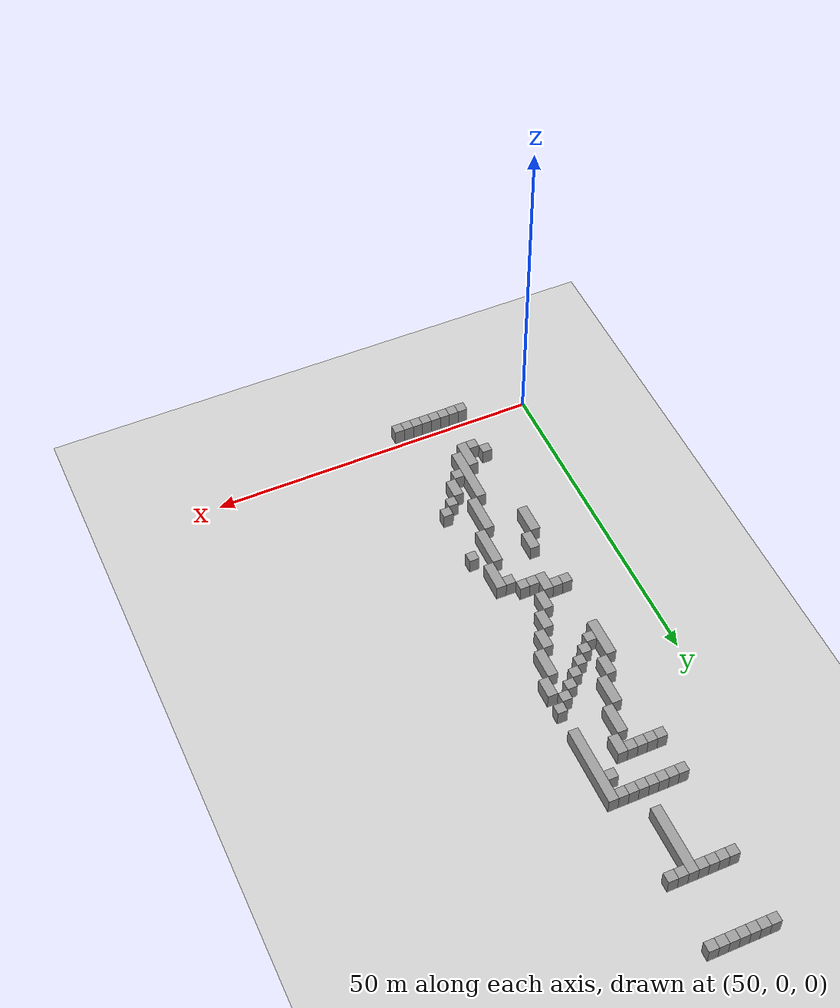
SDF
<sdf version="1.4">
 <world name="1_wall">
  <model name="ground_plane">
   <static>1</static>
   <link name="link">
    <collision name="collision">
     <geometry><plane><normal>0 0 1</normal><size>1000 1000</size></plane></geometry>
     <surface><friction><ode><mu>100</mu><mu2>50</mu2></ode></friction></surface>
    </collision>
    <visual name="visual">
     <cast_shadows>0</cast_shadows>
     <geometry><plane><normal>0 0 1</normal><size>10000 10000</size></plane></geometry>
     <material>
      <script><uri>file://media/materials/scripts/gazebo.material</uri><name>Gazebo/Grey</name></script>
     </material>
    </visual>
    <velocity_decay><linear>0</linear><angular>0</angular></velocity_decay>
   </link>
  </model>
  <model name="Wall_291">
   <static>1</static>
   <link name="Wall_291">
    <collision name="Wall_Collision_291">
     <geometry><box><size>1.5 1.5 2.5</size></box></geometry>
     <pose>0 0 1.25 0 -0 0</pose>
    </collision>
    <visual name="Wall_Visual_291">
     <pose>0 0 1.25 0 -0 0</pose>
     <geometry><box><size>1.5 1.5 2.5</size></box></geometry>
     <material>
      <script><uri>file://media/materials/scripts/gazebo.material</uri><name>Gazebo/Grey</name></script>
     </material>
    </visual>
    <velocity_decay><linear>0</linear><angular>0</angular></velocity_decay>
    <pose>60.0 -1.5 0 0 0 1.5707963267948966</pose>
   </link>
  </model>
  <model name="Wall_292">
   <static>1</static>
   <link name="Wall_292">
    <collision name="Wall_Collision_292">
     <geometry><box><size>1.5 1.5 2.5</size></box></geometry>
     <pose>0 0 1.25 0 -0 0</pose>
    </collision>
    <visual name="Wall_Visual_292">
     <pose>0 0 1.25 0 -0 0</pose>
     <geometry><box><size>1.5 1.5 2.5</size></box></geometry>
     <material>
      <script><uri>file://media/materials/scripts/gazebo.material</uri><name>Gazebo/Grey</name></script>
     </material>
    </visual>
    <velocity_decay><linear>0</linear><angular>0</angular></velocity_decay>
    <pose>60.0 7.5 0 0 0 1.5707963267948966</pose>
   </link>
  </model>
  <model name="Wall_293">
   <static>1</static>
   <link name="Wall_293">
    <collision name="Wall_Collision_293">
     <geometry><box><size>4.5 1.5 2.5</size></box></geometry>
     <pose>0 0 1.25 0 -0 0</pose>
    </collision>
    <visual name="Wall_Visual_293">
     <pose>0 0 1.25 0 -0 0</pose>
     <geometry><box><size>4.5 1.5 2.5</size></box></geometry>
     <material>
      <script><uri>file://media/materials/scripts/gazebo.material</uri><name>Gazebo/Grey</name></script>
     </material>
    </visual>
    <velocity_decay><linear>0</linear><angular>0</angular></velocity_decay>
    <pose>60.0 22.5 0 0 0 1.5707963267948966</pose>
   </link>
  </model>
  <model name="Wall_294">
   <static>1</static>
   <link name="Wall_294">
    <collision name="Wall_Collision_294">
     <geometry><box><size>1.5 1.5 2.5</size></box></geometry>
     <pose>0 0 1.25 0 -0 0</pose>
    </collision>
    <visual name="Wall_Visual_294">
     <pose>0 0 1.25 0 -0 0</pose>
     <geometry><box><size>1.5 1.5 2.5</size></box></geometry>
     <material>
      <script><uri>file://media/materials/scripts/gazebo.material</uri><name>Gazebo/Grey</name></script>
     </material>
    </visual>
    <velocity_decay><linear>0</linear><angular>0</angular></velocity_decay>
    <pose>60.0 34.5 0 0 0 1.5707963267948966</pose>
   </link>
  </model>
  <model name="Wall_295">
   <static>1</static>
   <link name="Wall_295">
    <collision name="Wall_Collision_295">
     <geometry><box><size>6.0 1.5 2.5</size></box></geometry>
     <pose>0 0 1.25 0 -0 0</pose>
    </collision>
    <visual name="Wall_Visual_295">
     <pose>0 0 1.25 0 -0 0</pose>
     <geometry><box><size>6.0 1.5 2.5</size></box></geometry>
     <material>
      <script><uri>file://media/materials/scripts/gazebo.material</uri><name>Gazebo/Grey</name></script>
     </material>
    </visual>
    <velocity_decay><linear>0</linear><angular>0</angular></velocity_decay>
    <pose>60.0 45.75 0 0 0 1.5707963267948966</pose>
   </link>
  </model>
  <model name="Wall_296">
   <static>1</static>
   <link name="Wall_296">
    <collision name="Wall_Collision_296">
     <geometry><box><size>1.5 1.5 2.5</size></box></geometry>
     <pose>0 0 1.25 0 -0 0</pose>
    </collision>
    <visual name="Wall_Visual_296">
     <pose>0 0 1.25 0 -0 0</pose>
     <geometry><box><size>1.5 1.5 2.5</size></box></geometry>
     <material>
      <script><uri>file://media/materials/scripts/gazebo.material</uri><name>Gazebo/Grey</name></script>
     </material>
    </visual>
    <velocity_decay><linear>0</linear><angular>0</angular></velocity_decay>
    <pose>60.0 63.0 0 0 0 1.5707963267948966</pose>
   </link>
  </model>
  <model name="Wall_297">
   <static>1</static>
   <link name="Wall_297">
    <collision name="Wall_Collision_297">
     <geometry><box><size>1.5 1.5 2.5</size></box></geometry>
     <pose>0 0 1.25 0 -0 0</pose>
    </collision>
    <visual name="Wall_Visual_297">
     <pose>0 0 1.25 0 -0 0</pose>
     <geometry><box><size>1.5 1.5 2.5</size></box></geometry>
     <material>
      <script><uri>file://media/materials/scripts/gazebo.material</uri><name>Gazebo/Grey</name></script>
     </material>
    </visual>
    <velocity_decay><linear>0</linear><angular>0</angular></velocity_decay>
    <pose>60.0 69.0 0 0 0 1.5707963267948966</pose>
   </link>
  </model>
  <model name="Wall_298">
   <static>1</static>
   <link name="Wall_298">
    <collision name="Wall_Collision_298">
     <geometry><box><size>1.5 1.5 2.5</size></box></geometry>
     <pose>0 0 1.25 0 -0 0</pose>
    </collision>
    <visual name="Wall_Visual_298">
     <pose>0 0 1.25 0 -0 0</pose>
     <geometry><box><size>1.5 1.5 2.5</size></box></geometry>
     <material>
      <script><uri>file://media/materials/scripts/gazebo.material</uri><name>Gazebo/Grey</name></script>
     </material>
    </visual>
    <velocity_decay><linear>0</linear><angular>0</angular></velocity_decay>
    <pose>60.0 82.5 0 0 0 1.5707963267948966</pose>
   </link>
  </model>
  <model name="Wall_299">
   <static>1</static>
   <link name="Wall_299">
    <collision name="Wall_Collision_299">
     <geometry><box><size>1.5 1.5 2.5</size></box></geometry>
     <pose>0 0 1.25 0 -0 0</pose>
    </collision>
    <visual name="Wall_Visual_299">
     <pose>0 0 1.25 0 -0 0</pose>
     <geometry><box><size>1.5 1.5 2.5</size></box></geometry>
     <material>
      <script><uri>file://media/materials/scripts/gazebo.material</uri><name>Gazebo/Grey</name></script>
     </material>
    </visual>
    <velocity_decay><linear>0</linear><angular>0</angular></velocity_decay>
    <pose>60.0 93.0 0 0 0 1.5707963267948966</pose>
   </link>
  </model>
  <model name="Wall_300">
   <static>1</static>
   <link name="Wall_300">
    <collision name="Wall_Collision_300">
     <geometry><box><size>1.5 1.5 2.5</size></box></geometry>
     <pose>0 0 1.25 0 -0 0</pose>
    </collision>
    <visual name="Wall_Visual_300">
     <pose>0 0 1.25 0 -0 0</pose>
     <geometry><box><size>1.5 1.5 2.5</size></box></geometry>
     <material>
      <script><uri>file://media/materials/scripts/gazebo.material</uri><name>Gazebo/Grey</name></script>
     </material>
    </visual>
    <velocity_decay><linear>0</linear><angular>0</angular></velocity_decay>
    <pose>61.5 -1.5 0 0 0 1.5707963267948966</pose>
   </link>
  </model>
  <model name="Wall_301">
   <static>1</static>
   <link name="Wall_301">
    <collision name="Wall_Collision_301">
     <geometry><box><size>1.5 1.5 2.5</size></box></geometry>
     <pose>0 0 1.25 0 -0 0</pose>
    </collision>
    <visual name="Wall_Visual_301">
     <pose>0 0 1.25 0 -0 0</pose>
     <geometry><box><size>1.5 1.5 2.5</size></box></geometry>
     <material>
      <script><uri>file://media/materials/scripts/gazebo.material</uri><name>Gazebo/Grey</name></script>
     </material>
    </visual>
    <velocity_decay><linear>0</linear><angular>0</angular></velocity_decay>
    <pose>61.5 6.0 0 0 0 1.5707963267948966</pose>
   </link>
  </model>
  <model name="Wall_302">
   <static>1</static>
   <link name="Wall_302">
    <collision name="Wall_Collision_302">
     <geometry><box><size>3.0 1.5 2.5</size></box></geometry>
     <pose>0 0 1.25 0 -0 0</pose>
    </collision>
    <visual name="Wall_Visual_302">
     <pose>0 0 1.25 0 -0 0</pose>
     <geometry><box><size>3.0 1.5 2.5</size></box></geometry>
     <material>
      <script><uri>file://media/materials/scripts/gazebo.material</uri><name>Gazebo/Grey</name></script>
     </material>
    </visual>
    <velocity_decay><linear>0</linear><angular>0</angular></velocity_decay>
    <pose>61.5 26.25 0 0 0 1.5707963267948966</pose>
   </link>
  </model>
  <model name="Wall_303">
   <static>1</static>
   <link name="Wall_303">
    <collision name="Wall_Collision_303">
     <geometry><box><size>1.5 1.5 2.5</size></box></geometry>
     <pose>0 0 1.25 0 -0 0</pose>
    </collision>
    <visual name="Wall_Visual_303">
     <pose>0 0 1.25 0 -0 0</pose>
     <geometry><box><size>1.5 1.5 2.5</size></box></geometry>
     <material>
      <script><uri>file://media/materials/scripts/gazebo.material</uri><name>Gazebo/Grey</name></script>
     </material>
    </visual>
    <velocity_decay><linear>0</linear><angular>0</angular></velocity_decay>
    <pose>61.5 34.5 0 0 0 1.5707963267948966</pose>
   </link>
  </model>
  <model name="Wall_304">
   <static>1</static>
   <link name="Wall_304">
    <collision name="Wall_Collision_304">
     <geometry><box><size>1.5 1.5 2.5</size></box></geometry>
     <pose>0 0 1.25 0 -0 0</pose>
    </collision>
    <visual name="Wall_Visual_304">
     <pose>0 0 1.25 0 -0 0</pose>
     <geometry><box><size>1.5 1.5 2.5</size></box></geometry>
     <material>
      <script><uri>file://media/materials/scripts/gazebo.material</uri><name>Gazebo/Grey</name></script>
     </material>
    </visual>
    <velocity_decay><linear>0</linear><angular>0</angular></velocity_decay>
    <pose>61.5 45.0 0 0 0 1.5707963267948966</pose>
   </link>
  </model>
  <model name="Wall_305">
   <static>1</static>
   <link name="Wall_305">
    <collision name="Wall_Collision_305">
     <geometry><box><size>3.0 1.5 2.5</size></box></geometry>
     <pose>0 0 1.25 0 -0 0</pose>
    </collision>
    <visual name="Wall_Visual_305">
     <pose>0 0 1.25 0 -0 0</pose>
     <geometry><box><size>3.0 1.5 2.5</size></box></geometry>
     <material>
      <script><uri>file://media/materials/scripts/gazebo.material</uri><name>Gazebo/Grey</name></script>
     </material>
    </visual>
    <velocity_decay><linear>0</linear><angular>0</angular></velocity_decay>
    <pose>61.5 50.25 0 0 0 1.5707963267948966</pose>
   </link>
  </model>
  <model name="Wall_306">
   <static>1</static>
   <link name="Wall_306">
    <collision name="Wall_Collision_306">
     <geometry><box><size>1.5 1.5 2.5</size></box></geometry>
     <pose>0 0 1.25 0 -0 0</pose>
    </collision>
    <visual name="Wall_Visual_306">
     <pose>0 0 1.25 0 -0 0</pose>
     <geometry><box><size>1.5 1.5 2.5</size></box></geometry>
     <material>
      <script><uri>file://media/materials/scripts/gazebo.material</uri><name>Gazebo/Grey</name></script>
     </material>
    </visual>
    <velocity_decay><linear>0</linear><angular>0</angular></velocity_decay>
    <pose>61.5 63.0 0 0 0 1.5707963267948966</pose>
   </link>
  </model>
  <model name="Wall_307">
   <static>1</static>
   <link name="Wall_307">
    <collision name="Wall_Collision_307">
     <geometry><box><size>1.5 1.5 2.5</size></box></geometry>
     <pose>0 0 1.25 0 -0 0</pose>
    </collision>
    <visual name="Wall_Visual_307">
     <pose>0 0 1.25 0 -0 0</pose>
     <geometry><box><size>1.5 1.5 2.5</size></box></geometry>
     <material>
      <script><uri>file://media/materials/scripts/gazebo.material</uri><name>Gazebo/Grey</name></script>
     </material>
    </visual>
    <velocity_decay><linear>0</linear><angular>0</angular></velocity_decay>
    <pose>61.5 69.0 0 0 0 1.5707963267948966</pose>
   </link>
  </model>
  <model name="Wall_308">
   <static>1</static>
   <link name="Wall_308">
    <collision name="Wall_Collision_308">
     <geometry><box><size>1.5 1.5 2.5</size></box></geometry>
     <pose>0 0 1.25 0 -0 0</pose>
    </collision>
    <visual name="Wall_Visual_308">
     <pose>0 0 1.25 0 -0 0</pose>
     <geometry><box><size>1.5 1.5 2.5</size></box></geometry>
     <material>
      <script><uri>file://media/materials/scripts/gazebo.material</uri><name>Gazebo/Grey</name></script>
     </material>
    </visual>
    <velocity_decay><linear>0</linear><angular>0</angular></velocity_decay>
    <pose>61.5 82.5 0 0 0 1.5707963267948966</pose>
   </link>
  </model>
  <model name="Wall_309">
   <static>1</static>
   <link name="Wall_309">
    <collision name="Wall_Collision_309">
     <geometry><box><size>1.5 1.5 2.5</size></box></geometry>
     <pose>0 0 1.25 0 -0 0</pose>
    </collision>
    <visual name="Wall_Visual_309">
     <pose>0 0 1.25 0 -0 0</pose>
     <geometry><box><size>1.5 1.5 2.5</size></box></geometry>
     <material>
      <script><uri>file://media/materials/scripts/gazebo.material</uri><name>Gazebo/Grey</name></script>
     </material>
    </visual>
    <velocity_decay><linear>0</linear><angular>0</angular></velocity_decay>
    <pose>61.5 93.0 0 0 0 1.5707963267948966</pose>
   </link>
  </model>
  <model name="Wall_310">
   <static>1</static>
   <link name="Wall_310">
    <collision name="Wall_Collision_310">
     <geometry><box><size>1.5 1.5 2.5</size></box></geometry>
     <pose>0 0 1.25 0 -0 0</pose>
    </collision>
    <visual name="Wall_Visual_310">
     <pose>0 0 1.25 0 -0 0</pose>
     <geometry><box><size>1.5 1.5 2.5</size></box></geometry>
     <material>
      <script><uri>file://media/materials/scripts/gazebo.material</uri><name>Gazebo/Grey</name></script>
     </material>
    </visual>
    <velocity_decay><linear>0</linear><angular>0</angular></velocity_decay>
    <pose>63.0 -1.5 0 0 0 1.5707963267948966</pose>
   </link>
  </model>
  <model name="Wall_311">
   <static>1</static>
   <link name="Wall_311">
    <collision name="Wall_Collision_311">
     <geometry><box><size>4.5 1.5 2.5</size></box></geometry>
     <pose>0 0 1.25 0 -0 0</pose>
    </collision>
    <visual name="Wall_Visual_311">
     <pose>0 0 1.25 0 -0 0</pose>
     <geometry><box><size>4.5 1.5 2.5</size></box></geometry>
     <material>
      <script><uri>file://media/materials/scripts/gazebo.material</uri><name>Gazebo/Grey</name></script>
     </material>
    </visual>
    <velocity_decay><linear>0</linear><angular>0</angular></velocity_decay>
    <pose>63.0 7.5 0 0 0 1.5707963267948966</pose>
   </link>
  </model>
  <model name="Wall_312">
   <static>1</static>
   <link name="Wall_312">
    <collision name="Wall_Collision_312">
     <geometry><box><size>3.0 1.5 2.5</size></box></geometry>
     <pose>0 0 1.25 0 -0 0</pose>
    </collision>
    <visual name="Wall_Visual_312">
     <pose>0 0 1.25 0 -0 0</pose>
     <geometry><box><size>3.0 1.5 2.5</size></box></geometry>
     <material>
      <script><uri>file://media/materials/scripts/gazebo.material</uri><name>Gazebo/Grey</name></script>
     </material>
    </visual>
    <velocity_decay><linear>0</linear><angular>0</angular></velocity_decay>
    <pose>63.0 33.75 0 0 0 1.5707963267948966</pose>
   </link>
  </model>
  <model name="Wall_313">
   <static>1</static>
   <link name="Wall_313">
    <collision name="Wall_Collision_313">
     <geometry><box><size>1.5 1.5 2.5</size></box></geometry>
     <pose>0 0 1.25 0 -0 0</pose>
    </collision>
    <visual name="Wall_Visual_313">
     <pose>0 0 1.25 0 -0 0</pose>
     <geometry><box><size>1.5 1.5 2.5</size></box></geometry>
     <material>
      <script><uri>file://media/materials/scripts/gazebo.material</uri><name>Gazebo/Grey</name></script>
     </material>
    </visual>
    <velocity_decay><linear>0</linear><angular>0</angular></velocity_decay>
    <pose>63.0 46.5 0 0 0 1.5707963267948966</pose>
   </link>
  </model>
  <model name="Wall_314">
   <static>1</static>
   <link name="Wall_314">
    <collision name="Wall_Collision_314">
     <geometry><box><size>4.5 1.5 2.5</size></box></geometry>
     <pose>0 0 1.25 0 -0 0</pose>
    </collision>
    <visual name="Wall_Visual_314">
     <pose>0 0 1.25 0 -0 0</pose>
     <geometry><box><size>4.5 1.5 2.5</size></box></geometry>
     <material>
      <script><uri>file://media/materials/scripts/gazebo.material</uri><name>Gazebo/Grey</name></script>
     </material>
    </visual>
    <velocity_decay><linear>0</linear><angular>0</angular></velocity_decay>
    <pose>63.0 54.0 0 0 0 1.5707963267948966</pose>
   </link>
  </model>
  <model name="Wall_315">
   <static>1</static>
   <link name="Wall_315">
    <collision name="Wall_Collision_315">
     <geometry><box><size>1.5 1.5 2.5</size></box></geometry>
     <pose>0 0 1.25 0 -0 0</pose>
    </collision>
    <visual name="Wall_Visual_315">
     <pose>0 0 1.25 0 -0 0</pose>
     <geometry><box><size>1.5 1.5 2.5</size></box></geometry>
     <material>
      <script><uri>file://media/materials/scripts/gazebo.material</uri><name>Gazebo/Grey</name></script>
     </material>
    </visual>
    <velocity_decay><linear>0</linear><angular>0</angular></velocity_decay>
    <pose>63.0 63.0 0 0 0 1.5707963267948966</pose>
   </link>
  </model>
  <model name="Wall_316">
   <static>1</static>
   <link name="Wall_316">
    <collision name="Wall_Collision_316">
     <geometry><box><size>1.5 1.5 2.5</size></box></geometry>
     <pose>0 0 1.25 0 -0 0</pose>
    </collision>
    <visual name="Wall_Visual_316">
     <pose>0 0 1.25 0 -0 0</pose>
     <geometry><box><size>1.5 1.5 2.5</size></box></geometry>
     <material>
      <script><uri>file://media/materials/scripts/gazebo.material</uri><name>Gazebo/Grey</name></script>
     </material>
    </visual>
    <velocity_decay><linear>0</linear><angular>0</angular></velocity_decay>
    <pose>63.0 69.0 0 0 0 1.5707963267948966</pose>
   </link>
  </model>
  <model name="Wall_317">
   <static>1</static>
   <link name="Wall_317">
    <collision name="Wall_Collision_317">
     <geometry><box><size>1.5 1.5 2.5</size></box></geometry>
     <pose>0 0 1.25 0 -0 0</pose>
    </collision>
    <visual name="Wall_Visual_317">
     <pose>0 0 1.25 0 -0 0</pose>
     <geometry><box><size>1.5 1.5 2.5</size></box></geometry>
     <material>
      <script><uri>file://media/materials/scripts/gazebo.material</uri><name>Gazebo/Grey</name></script>
     </material>
    </visual>
    <velocity_decay><linear>0</linear><angular>0</angular></velocity_decay>
    <pose>63.0 82.5 0 0 0 1.5707963267948966</pose>
   </link>
  </model>
  <model name="Wall_318">
   <static>1</static>
   <link name="Wall_318">
    <collision name="Wall_Collision_318">
     <geometry><box><size>1.5 1.5 2.5</size></box></geometry>
     <pose>0 0 1.25 0 -0 0</pose>
    </collision>
    <visual name="Wall_Visual_318">
     <pose>0 0 1.25 0 -0 0</pose>
     <geometry><box><size>1.5 1.5 2.5</size></box></geometry>
     <material>
      <script><uri>file://media/materials/scripts/gazebo.material</uri><name>Gazebo/Grey</name></script>
     </material>
    </visual>
    <velocity_decay><linear>0</linear><angular>0</angular></velocity_decay>
    <pose>63.0 93.0 0 0 0 1.5707963267948966</pose>
   </link>
  </model>
  <model name="Wall_319">
   <static>1</static>
   <link name="Wall_319">
    <collision name="Wall_Collision_319">
     <geometry><box><size>1.5 1.5 2.5</size></box></geometry>
     <pose>0 0 1.25 0 -0 0</pose>
    </collision>
    <visual name="Wall_Visual_319">
     <pose>0 0 1.25 0 -0 0</pose>
     <geometry><box><size>1.5 1.5 2.5</size></box></geometry>
     <material>
      <script><uri>file://media/materials/scripts/gazebo.material</uri><name>Gazebo/Grey</name></script>
     </material>
    </visual>
    <velocity_decay><linear>0</linear><angular>0</angular></velocity_decay>
    <pose>64.5 -1.5 0 0 0 1.5707963267948966</pose>
   </link>
  </model>
  <model name="Wall_320">
   <static>1</static>
   <link name="Wall_320">
    <collision name="Wall_Collision_320">
     <geometry><box><size>9.0 1.5 2.5</size></box></geometry>
     <pose>0 0 1.25 0 -0 0</pose>
    </collision>
    <visual name="Wall_Visual_320">
     <pose>0 0 1.25 0 -0 0</pose>
     <geometry><box><size>9.0 1.5 2.5</size></box></geometry>
     <material>
      <script><uri>file://media/materials/scripts/gazebo.material</uri><name>Gazebo/Grey</name></script>
     </material>
    </visual>
    <velocity_decay><linear>0</linear><angular>0</angular></velocity_decay>
    <pose>64.5 11.25 0 0 0 1.5707963267948966</pose>
   </link>
  </model>
  <model name="Wall_321">
   <static>1</static>
   <link name="Wall_321">
    <collision name="Wall_Collision_321">
     <geometry><box><size>1.5 1.5 2.5</size></box></geometry>
     <pose>0 0 1.25 0 -0 0</pose>
    </collision>
    <visual name="Wall_Visual_321">
     <pose>0 0 1.25 0 -0 0</pose>
     <geometry><box><size>1.5 1.5 2.5</size></box></geometry>
     <material>
      <script><uri>file://media/materials/scripts/gazebo.material</uri><name>Gazebo/Grey</name></script>
     </material>
    </visual>
    <velocity_decay><linear>0</linear><angular>0</angular></velocity_decay>
    <pose>64.5 33.0 0 0 0 1.5707963267948966</pose>
   </link>
  </model>
  <model name="Wall_322">
   <static>1</static>
   <link name="Wall_322">
    <collision name="Wall_Collision_322">
     <geometry><box><size>3.0 1.5 2.5</size></box></geometry>
     <pose>0 0 1.25 0 -0 0</pose>
    </collision>
    <visual name="Wall_Visual_322">
     <pose>0 0 1.25 0 -0 0</pose>
     <geometry><box><size>3.0 1.5 2.5</size></box></geometry>
     <material>
      <script><uri>file://media/materials/scripts/gazebo.material</uri><name>Gazebo/Grey</name></script>
     </material>
    </visual>
    <velocity_decay><linear>0</linear><angular>0</angular></velocity_decay>
    <pose>64.5 36.75 0 0 0 1.5707963267948966</pose>
   </link>
  </model>
  <model name="Wall_323">
   <static>1</static>
   <link name="Wall_323">
    <collision name="Wall_Collision_323">
     <geometry><box><size>1.5 1.5 2.5</size></box></geometry>
     <pose>0 0 1.25 0 -0 0</pose>
    </collision>
    <visual name="Wall_Visual_323">
     <pose>0 0 1.25 0 -0 0</pose>
     <geometry><box><size>1.5 1.5 2.5</size></box></geometry>
     <material>
      <script><uri>file://media/materials/scripts/gazebo.material</uri><name>Gazebo/Grey</name></script>
     </material>
    </visual>
    <velocity_decay><linear>0</linear><angular>0</angular></velocity_decay>
    <pose>64.5 48.0 0 0 0 1.5707963267948966</pose>
   </link>
  </model>
  <model name="Wall_324">
   <static>1</static>
   <link name="Wall_324">
    <collision name="Wall_Collision_324">
     <geometry><box><size>4.5 1.5 2.5</size></box></geometry>
     <pose>0 0 1.25 0 -0 0</pose>
    </collision>
    <visual name="Wall_Visual_324">
     <pose>0 0 1.25 0 -0 0</pose>
     <geometry><box><size>4.5 1.5 2.5</size></box></geometry>
     <material>
      <script><uri>file://media/materials/scripts/gazebo.material</uri><name>Gazebo/Grey</name></script>
     </material>
    </visual>
    <velocity_decay><linear>0</linear><angular>0</angular></velocity_decay>
    <pose>64.5 58.5 0 0 0 1.5707963267948966</pose>
   </link>
  </model>
  <model name="Wall_325">
   <static>1</static>
   <link name="Wall_325">
    <collision name="Wall_Collision_325">
     <geometry><box><size>1.5 1.5 2.5</size></box></geometry>
     <pose>0 0 1.25 0 -0 0</pose>
    </collision>
    <visual name="Wall_Visual_325">
     <pose>0 0 1.25 0 -0 0</pose>
     <geometry><box><size>1.5 1.5 2.5</size></box></geometry>
     <material>
      <script><uri>file://media/materials/scripts/gazebo.material</uri><name>Gazebo/Grey</name></script>
     </material>
    </visual>
    <velocity_decay><linear>0</linear><angular>0</angular></velocity_decay>
    <pose>64.5 63.0 0 0 0 1.5707963267948966</pose>
   </link>
  </model>
  <model name="Wall_326">
   <static>1</static>
   <link name="Wall_326">
    <collision name="Wall_Collision_326">
     <geometry><box><size>1.5 1.5 2.5</size></box></geometry>
     <pose>0 0 1.25 0 -0 0</pose>
    </collision>
    <visual name="Wall_Visual_326">
     <pose>0 0 1.25 0 -0 0</pose>
     <geometry><box><size>1.5 1.5 2.5</size></box></geometry>
     <material>
      <script><uri>file://media/materials/scripts/gazebo.material</uri><name>Gazebo/Grey</name></script>
     </material>
    </visual>
    <velocity_decay><linear>0</linear><angular>0</angular></velocity_decay>
    <pose>64.5 69.0 0 0 0 1.5707963267948966</pose>
   </link>
  </model>
  <model name="Wall_327">
   <static>1</static>
   <link name="Wall_327">
    <collision name="Wall_Collision_327">
     <geometry><box><size>1.5 1.5 2.5</size></box></geometry>
     <pose>0 0 1.25 0 -0 0</pose>
    </collision>
    <visual name="Wall_Visual_327">
     <pose>0 0 1.25 0 -0 0</pose>
     <geometry><box><size>1.5 1.5 2.5</size></box></geometry>
     <material>
      <script><uri>file://media/materials/scripts/gazebo.material</uri><name>Gazebo/Grey</name></script>
     </material>
    </visual>
    <velocity_decay><linear>0</linear><angular>0</angular></velocity_decay>
    <pose>64.5 82.5 0 0 0 1.5707963267948966</pose>
   </link>
  </model>
  <model name="Wall_328">
   <static>1</static>
   <link name="Wall_328">
    <collision name="Wall_Collision_328">
     <geometry><box><size>1.5 1.5 2.5</size></box></geometry>
     <pose>0 0 1.25 0 -0 0</pose>
    </collision>
    <visual name="Wall_Visual_328">
     <pose>0 0 1.25 0 -0 0</pose>
     <geometry><box><size>1.5 1.5 2.5</size></box></geometry>
     <material>
      <script><uri>file://media/materials/scripts/gazebo.material</uri><name>Gazebo/Grey</name></script>
     </material>
    </visual>
    <velocity_decay><linear>0</linear><angular>0</angular></velocity_decay>
    <pose>64.5 93.0 0 0 0 1.5707963267948966</pose>
   </link>
  </model>
  <model name="Wall_329">
   <static>1</static>
   <link name="Wall_329">
    <collision name="Wall_Collision_329">
     <geometry><box><size>1.5 1.5 2.5</size></box></geometry>
     <pose>0 0 1.25 0 -0 0</pose>
    </collision>
    <visual name="Wall_Visual_329">
     <pose>0 0 1.25 0 -0 0</pose>
     <geometry><box><size>1.5 1.5 2.5</size></box></geometry>
     <material>
      <script><uri>file://media/materials/scripts/gazebo.material</uri><name>Gazebo/Grey</name></script>
     </material>
    </visual>
    <velocity_decay><linear>0</linear><angular>0</angular></velocity_decay>
    <pose>66.0 -1.5 0 0 0 1.5707963267948966</pose>
   </link>
  </model>
  <model name="Wall_330">
   <static>1</static>
   <link name="Wall_330">
    <collision name="Wall_Collision_330">
     <geometry><box><size>1.5 1.5 2.5</size></box></geometry>
     <pose>0 0 1.25 0 -0 0</pose>
    </collision>
    <visual name="Wall_Visual_330">
     <pose>0 0 1.25 0 -0 0</pose>
     <geometry><box><size>1.5 1.5 2.5</size></box></geometry>
     <material>
      <script><uri>file://media/materials/scripts/gazebo.material</uri><name>Gazebo/Grey</name></script>
     </material>
    </visual>
    <velocity_decay><linear>0</linear><angular>0</angular></velocity_decay>
    <pose>66.0 10.5 0 0 0 1.5707963267948966</pose>
   </link>
  </model>
  <model name="Wall_331">
   <static>1</static>
   <link name="Wall_331">
    <collision name="Wall_Collision_331">
     <geometry><box><size>6.0 1.5 2.5</size></box></geometry>
     <pose>0 0 1.25 0 -0 0</pose>
    </collision>
    <visual name="Wall_Visual_331">
     <pose>0 0 1.25 0 -0 0</pose>
     <geometry><box><size>6.0 1.5 2.5</size></box></geometry>
     <material>
      <script><uri>file://media/materials/scripts/gazebo.material</uri><name>Gazebo/Grey</name></script>
     </material>
    </visual>
    <velocity_decay><linear>0</linear><angular>0</angular></velocity_decay>
    <pose>66.0 18.75 0 0 0 1.5707963267948966</pose>
   </link>
  </model>
  <model name="Wall_332">
   <static>1</static>
   <link name="Wall_332">
    <collision name="Wall_Collision_332">
     <geometry><box><size>1.5 1.5 2.5</size></box></geometry>
     <pose>0 0 1.25 0 -0 0</pose>
    </collision>
    <visual name="Wall_Visual_332">
     <pose>0 0 1.25 0 -0 0</pose>
     <geometry><box><size>1.5 1.5 2.5</size></box></geometry>
     <material>
      <script><uri>file://media/materials/scripts/gazebo.material</uri><name>Gazebo/Grey</name></script>
     </material>
    </visual>
    <velocity_decay><linear>0</linear><angular>0</angular></velocity_decay>
    <pose>66.0 33.0 0 0 0 1.5707963267948966</pose>
   </link>
  </model>
  <model name="Wall_333">
   <static>1</static>
   <link name="Wall_333">
    <collision name="Wall_Collision_333">
     <geometry><box><size>3.0 1.5 2.5</size></box></geometry>
     <pose>0 0 1.25 0 -0 0</pose>
    </collision>
    <visual name="Wall_Visual_333">
     <pose>0 0 1.25 0 -0 0</pose>
     <geometry><box><size>3.0 1.5 2.5</size></box></geometry>
     <material>
      <script><uri>file://media/materials/scripts/gazebo.material</uri><name>Gazebo/Grey</name></script>
     </material>
    </visual>
    <velocity_decay><linear>0</linear><angular>0</angular></velocity_decay>
    <pose>66.0 39.75 0 0 0 1.5707963267948966</pose>
   </link>
  </model>
  <model name="Wall_334">
   <static>1</static>
   <link name="Wall_334">
    <collision name="Wall_Collision_334">
     <geometry><box><size>1.5 1.5 2.5</size></box></geometry>
     <pose>0 0 1.25 0 -0 0</pose>
    </collision>
    <visual name="Wall_Visual_334">
     <pose>0 0 1.25 0 -0 0</pose>
     <geometry><box><size>1.5 1.5 2.5</size></box></geometry>
     <material>
      <script><uri>file://media/materials/scripts/gazebo.material</uri><name>Gazebo/Grey</name></script>
     </material>
    </visual>
    <velocity_decay><linear>0</linear><angular>0</angular></velocity_decay>
    <pose>66.0 49.5 0 0 0 1.5707963267948966</pose>
   </link>
  </model>
  <model name="Wall_335">
   <static>1</static>
   <link name="Wall_335">
    <collision name="Wall_Collision_335">
     <geometry><box><size>3.0 1.5 2.5</size></box></geometry>
     <pose>0 0 1.25 0 -0 0</pose>
    </collision>
    <visual name="Wall_Visual_335">
     <pose>0 0 1.25 0 -0 0</pose>
     <geometry><box><size>3.0 1.5 2.5</size></box></geometry>
     <material>
      <script><uri>file://media/materials/scripts/gazebo.material</uri><name>Gazebo/Grey</name></script>
     </material>
    </visual>
    <velocity_decay><linear>0</linear><angular>0</angular></velocity_decay>
    <pose>66.0 62.25 0 0 0 1.5707963267948966</pose>
   </link>
  </model>
  <model name="Wall_336">
   <static>1</static>
   <link name="Wall_336">
    <collision name="Wall_Collision_336">
     <geometry><box><size>1.5 1.5 2.5</size></box></geometry>
     <pose>0 0 1.25 0 -0 0</pose>
    </collision>
    <visual name="Wall_Visual_336">
     <pose>0 0 1.25 0 -0 0</pose>
     <geometry><box><size>1.5 1.5 2.5</size></box></geometry>
     <material>
      <script><uri>file://media/materials/scripts/gazebo.material</uri><name>Gazebo/Grey</name></script>
     </material>
    </visual>
    <velocity_decay><linear>0</linear><angular>0</angular></velocity_decay>
    <pose>66.0 69.0 0 0 0 1.5707963267948966</pose>
   </link>
  </model>
  <model name="Wall_337">
   <static>1</static>
   <link name="Wall_337">
    <collision name="Wall_Collision_337">
     <geometry><box><size>10.5 1.5 2.5</size></box></geometry>
     <pose>0 0 1.25 0 -0 0</pose>
    </collision>
    <visual name="Wall_Visual_337">
     <pose>0 0 1.25 0 -0 0</pose>
     <geometry><box><size>10.5 1.5 2.5</size></box></geometry>
     <material>
      <script><uri>file://media/materials/scripts/gazebo.material</uri><name>Gazebo/Grey</name></script>
     </material>
    </visual>
    <velocity_decay><linear>0</linear><angular>0</angular></velocity_decay>
    <pose>66.0 78.0 0 0 0 1.5707963267948966</pose>
   </link>
  </model>
  <model name="Wall_338">
   <static>1</static>
   <link name="Wall_338">
    <collision name="Wall_Collision_338">
     <geometry><box><size>1.5 1.5 2.5</size></box></geometry>
     <pose>0 0 1.25 0 -0 0</pose>
    </collision>
    <visual name="Wall_Visual_338">
     <pose>0 0 1.25 0 -0 0</pose>
     <geometry><box><size>1.5 1.5 2.5</size></box></geometry>
     <material>
      <script><uri>file://media/materials/scripts/gazebo.material</uri><name>Gazebo/Grey</name></script>
     </material>
    </visual>
    <velocity_decay><linear>0</linear><angular>0</angular></velocity_decay>
    <pose>66.0 93.0 0 0 0 1.5707963267948966</pose>
   </link>
  </model>
  <model name="Wall_339">
   <static>1</static>
   <link name="Wall_339">
    <collision name="Wall_Collision_339">
     <geometry><box><size>1.5 1.5 2.5</size></box></geometry>
     <pose>0 0 1.25 0 -0 0</pose>
    </collision>
    <visual name="Wall_Visual_339">
     <pose>0 0 1.25 0 -0 0</pose>
     <geometry><box><size>1.5 1.5 2.5</size></box></geometry>
     <material>
      <script><uri>file://media/materials/scripts/gazebo.material</uri><name>Gazebo/Grey</name></script>
     </material>
    </visual>
    <velocity_decay><linear>0</linear><angular>0</angular></velocity_decay>
    <pose>67.5 -1.5 0 0 0 1.5707963267948966</pose>
   </link>
  </model>
  <model name="Wall_340">
   <static>1</static>
   <link name="Wall_340">
    <collision name="Wall_Collision_340">
     <geometry><box><size>3.0 1.5 2.5</size></box></geometry>
     <pose>0 0 1.25 0 -0 0</pose>
    </collision>
    <visual name="Wall_Visual_340">
     <pose>0 0 1.25 0 -0 0</pose>
     <geometry><box><size>3.0 1.5 2.5</size></box></geometry>
     <material>
      <script><uri>file://media/materials/scripts/gazebo.material</uri><name>Gazebo/Grey</name></script>
     </material>
    </visual>
    <velocity_decay><linear>0</linear><angular>0</angular></velocity_decay>
    <pose>67.5 12.75 0 0 0 1.5707963267948966</pose>
   </link>
  </model>
  <model name="Wall_341">
   <static>1</static>
   <link name="Wall_341">
    <collision name="Wall_Collision_341">
     <geometry><box><size>6.0 1.5 2.5</size></box></geometry>
     <pose>0 0 1.25 0 -0 0</pose>
    </collision>
    <visual name="Wall_Visual_341">
     <pose>0 0 1.25 0 -0 0</pose>
     <geometry><box><size>6.0 1.5 2.5</size></box></geometry>
     <material>
      <script><uri>file://media/materials/scripts/gazebo.material</uri><name>Gazebo/Grey</name></script>
     </material>
    </visual>
    <velocity_decay><linear>0</linear><angular>0</angular></velocity_decay>
    <pose>67.5 24.75 0 0 0 1.5707963267948966</pose>
   </link>
  </model>
  <model name="Wall_342">
   <static>1</static>
   <link name="Wall_342">
    <collision name="Wall_Collision_342">
     <geometry><box><size>1.5 1.5 2.5</size></box></geometry>
     <pose>0 0 1.25 0 -0 0</pose>
    </collision>
    <visual name="Wall_Visual_342">
     <pose>0 0 1.25 0 -0 0</pose>
     <geometry><box><size>1.5 1.5 2.5</size></box></geometry>
     <material>
      <script><uri>file://media/materials/scripts/gazebo.material</uri><name>Gazebo/Grey</name></script>
     </material>
    </visual>
    <velocity_decay><linear>0</linear><angular>0</angular></velocity_decay>
    <pose>67.5 31.5 0 0 0 1.5707963267948966</pose>
   </link>
  </model>
  <model name="Wall_343">
   <static>1</static>
   <link name="Wall_343">
    <collision name="Wall_Collision_343">
     <geometry><box><size>3.0 1.5 2.5</size></box></geometry>
     <pose>0 0 1.25 0 -0 0</pose>
    </collision>
    <visual name="Wall_Visual_343">
     <pose>0 0 1.25 0 -0 0</pose>
     <geometry><box><size>3.0 1.5 2.5</size></box></geometry>
     <material>
      <script><uri>file://media/materials/scripts/gazebo.material</uri><name>Gazebo/Grey</name></script>
     </material>
    </visual>
    <velocity_decay><linear>0</linear><angular>0</angular></velocity_decay>
    <pose>67.5 42.75 0 0 0 1.5707963267948966</pose>
   </link>
  </model>
  <model name="Wall_344">
   <static>1</static>
   <link name="Wall_344">
    <collision name="Wall_Collision_344">
     <geometry><box><size>1.5 1.5 2.5</size></box></geometry>
     <pose>0 0 1.25 0 -0 0</pose>
    </collision>
    <visual name="Wall_Visual_344">
     <pose>0 0 1.25 0 -0 0</pose>
     <geometry><box><size>1.5 1.5 2.5</size></box></geometry>
     <material>
      <script><uri>file://media/materials/scripts/gazebo.material</uri><name>Gazebo/Grey</name></script>
     </material>
    </visual>
    <velocity_decay><linear>0</linear><angular>0</angular></velocity_decay>
    <pose>67.5 51.0 0 0 0 1.5707963267948966</pose>
   </link>
  </model>
  <model name="Wall_345">
   <static>1</static>
   <link name="Wall_345">
    <collision name="Wall_Collision_345">
     <geometry><box><size>1.5 1.5 2.5</size></box></geometry>
     <pose>0 0 1.25 0 -0 0</pose>
    </collision>
    <visual name="Wall_Visual_345">
     <pose>0 0 1.25 0 -0 0</pose>
     <geometry><box><size>1.5 1.5 2.5</size></box></geometry>
     <material>
      <script><uri>file://media/materials/scripts/gazebo.material</uri><name>Gazebo/Grey</name></script>
     </material>
    </visual>
    <velocity_decay><linear>0</linear><angular>0</angular></velocity_decay>
    <pose>67.5 69.0 0 0 0 1.5707963267948966</pose>
   </link>
  </model>
  <model name="Wall_346">
   <static>1</static>
   <link name="Wall_346">
    <collision name="Wall_Collision_346">
     <geometry><box><size>1.5 1.5 2.5</size></box></geometry>
     <pose>0 0 1.25 0 -0 0</pose>
    </collision>
    <visual name="Wall_Visual_346">
     <pose>0 0 1.25 0 -0 0</pose>
     <geometry><box><size>1.5 1.5 2.5</size></box></geometry>
     <material>
      <script><uri>file://media/materials/scripts/gazebo.material</uri><name>Gazebo/Grey</name></script>
     </material>
    </visual>
    <velocity_decay><linear>0</linear><angular>0</angular></velocity_decay>
    <pose>67.5 82.5 0 0 0 1.5707963267948966</pose>
   </link>
  </model>
  <model name="Wall_347">
   <static>1</static>
   <link name="Wall_347">
    <collision name="Wall_Collision_347">
     <geometry><box><size>1.5 1.5 2.5</size></box></geometry>
     <pose>0 0 1.25 0 -0 0</pose>
    </collision>
    <visual name="Wall_Visual_347">
     <pose>0 0 1.25 0 -0 0</pose>
     <geometry><box><size>1.5 1.5 2.5</size></box></geometry>
     <material>
      <script><uri>file://media/materials/scripts/gazebo.material</uri><name>Gazebo/Grey</name></script>
     </material>
    </visual>
    <velocity_decay><linear>0</linear><angular>0</angular></velocity_decay>
    <pose>67.5 93.0 0 0 0 1.5707963267948966</pose>
   </link>
  </model>
  <model name="Wall_348">
   <static>1</static>
   <link name="Wall_348">
    <collision name="Wall_Collision_348">
     <geometry><box><size>1.5 1.5 2.5</size></box></geometry>
     <pose>0 0 1.25 0 -0 0</pose>
    </collision>
    <visual name="Wall_Visual_348">
     <pose>0 0 1.25 0 -0 0</pose>
     <geometry><box><size>1.5 1.5 2.5</size></box></geometry>
     <material>
      <script><uri>file://media/materials/scripts/gazebo.material</uri><name>Gazebo/Grey</name></script>
     </material>
    </visual>
    <velocity_decay><linear>0</linear><angular>0</angular></velocity_decay>
    <pose>69.0 -1.5 0 0 0 1.5707963267948966</pose>
   </link>
  </model>
  <model name="Wall_349">
   <static>1</static>
   <link name="Wall_349">
    <collision name="Wall_Collision_349">
     <geometry><box><size>1.5 1.5 2.5</size></box></geometry>
     <pose>0 0 1.25 0 -0 0</pose>
    </collision>
    <visual name="Wall_Visual_349">
     <pose>0 0 1.25 0 -0 0</pose>
     <geometry><box><size>1.5 1.5 2.5</size></box></geometry>
     <material>
      <script><uri>file://media/materials/scripts/gazebo.material</uri><name>Gazebo/Grey</name></script>
     </material>
    </visual>
    <velocity_decay><linear>0</linear><angular>0</angular></velocity_decay>
    <pose>69.0 15.0 0 0 0 1.5707963267948966</pose>
   </link>
  </model>
  <model name="Wall_350">
   <static>1</static>
   <link name="Wall_350">
    <collision name="Wall_Collision_350">
     <geometry><box><size>4.5 1.5 2.5</size></box></geometry>
     <pose>0 0 1.25 0 -0 0</pose>
    </collision>
    <visual name="Wall_Visual_350">
     <pose>0 0 1.25 0 -0 0</pose>
     <geometry><box><size>4.5 1.5 2.5</size></box></geometry>
     <material>
      <script><uri>file://media/materials/scripts/gazebo.material</uri><name>Gazebo/Grey</name></script>
     </material>
    </visual>
    <velocity_decay><linear>0</linear><angular>0</angular></velocity_decay>
    <pose>69.0 30.0 0 0 0 1.5707963267948966</pose>
   </link>
  </model>
  <model name="Wall_351">
   <static>1</static>
   <link name="Wall_351">
    <collision name="Wall_Collision_351">
     <geometry><box><size>4.5 1.5 2.5</size></box></geometry>
     <pose>0 0 1.25 0 -0 0</pose>
    </collision>
    <visual name="Wall_Visual_351">
     <pose>0 0 1.25 0 -0 0</pose>
     <geometry><box><size>4.5 1.5 2.5</size></box></geometry>
     <material>
      <script><uri>file://media/materials/scripts/gazebo.material</uri><name>Gazebo/Grey</name></script>
     </material>
    </visual>
    <velocity_decay><linear>0</linear><angular>0</angular></velocity_decay>
    <pose>69.0 46.5 0 0 0 1.5707963267948966</pose>
   </link>
  </model>
  <model name="Wall_352">
   <static>1</static>
   <link name="Wall_352">
    <collision name="Wall_Collision_352">
     <geometry><box><size>1.5 1.5 2.5</size></box></geometry>
     <pose>0 0 1.25 0 -0 0</pose>
    </collision>
    <visual name="Wall_Visual_352">
     <pose>0 0 1.25 0 -0 0</pose>
     <geometry><box><size>1.5 1.5 2.5</size></box></geometry>
     <material>
      <script><uri>file://media/materials/scripts/gazebo.material</uri><name>Gazebo/Grey</name></script>
     </material>
    </visual>
    <velocity_decay><linear>0</linear><angular>0</angular></velocity_decay>
    <pose>69.0 52.5 0 0 0 1.5707963267948966</pose>
   </link>
  </model>
  <model name="Wall_353">
   <static>1</static>
   <link name="Wall_353">
    <collision name="Wall_Collision_353">
     <geometry><box><size>1.5 1.5 2.5</size></box></geometry>
     <pose>0 0 1.25 0 -0 0</pose>
    </collision>
    <visual name="Wall_Visual_353">
     <pose>0 0 1.25 0 -0 0</pose>
     <geometry><box><size>1.5 1.5 2.5</size></box></geometry>
     <material>
      <script><uri>file://media/materials/scripts/gazebo.material</uri><name>Gazebo/Grey</name></script>
     </material>
    </visual>
    <velocity_decay><linear>0</linear><angular>0</angular></velocity_decay>
    <pose>69.0 66.0 0 0 0 1.5707963267948966</pose>
   </link>
  </model>
  <model name="Wall_354">
   <static>1</static>
   <link name="Wall_354">
    <collision name="Wall_Collision_354">
     <geometry><box><size>1.5 1.5 2.5</size></box></geometry>
     <pose>0 0 1.25 0 -0 0</pose>
    </collision>
    <visual name="Wall_Visual_354">
     <pose>0 0 1.25 0 -0 0</pose>
     <geometry><box><size>1.5 1.5 2.5</size></box></geometry>
     <material>
      <script><uri>file://media/materials/scripts/gazebo.material</uri><name>Gazebo/Grey</name></script>
     </material>
    </visual>
    <velocity_decay><linear>0</linear><angular>0</angular></velocity_decay>
    <pose>69.0 69.0 0 0 0 1.5707963267948966</pose>
   </link>
  </model>
  <model name="Wall_355">
   <static>1</static>
   <link name="Wall_355">
    <collision name="Wall_Collision_355">
     <geometry><box><size>1.5 1.5 2.5</size></box></geometry>
     <pose>0 0 1.25 0 -0 0</pose>
    </collision>
    <visual name="Wall_Visual_355">
     <pose>0 0 1.25 0 -0 0</pose>
     <geometry><box><size>1.5 1.5 2.5</size></box></geometry>
     <material>
      <script><uri>file://media/materials/scripts/gazebo.material</uri><name>Gazebo/Grey</name></script>
     </material>
    </visual>
    <velocity_decay><linear>0</linear><angular>0</angular></velocity_decay>
    <pose>69.0 82.5 0 0 0 1.5707963267948966</pose>
   </link>
  </model>
  <model name="Wall_356">
   <static>1</static>
   <link name="Wall_356">
    <collision name="Wall_Collision_356">
     <geometry><box><size>1.5 1.5 2.5</size></box></geometry>
     <pose>0 0 1.25 0 -0 0</pose>
    </collision>
    <visual name="Wall_Visual_356">
     <pose>0 0 1.25 0 -0 0</pose>
     <geometry><box><size>1.5 1.5 2.5</size></box></geometry>
     <material>
      <script><uri>file://media/materials/scripts/gazebo.material</uri><name>Gazebo/Grey</name></script>
     </material>
    </visual>
    <velocity_decay><linear>0</linear><angular>0</angular></velocity_decay>
    <pose>69.0 93.0 0 0 0 1.5707963267948966</pose>
   </link>
  </model>
  <model name="Wall_357">
   <static>1</static>
   <link name="Wall_357">
    <collision name="Wall_Collision_357">
     <geometry><box><size>1.5 1.5 2.5</size></box></geometry>
     <pose>0 0 1.25 0 -0 0</pose>
    </collision>
    <visual name="Wall_Visual_357">
     <pose>0 0 1.25 0 -0 0</pose>
     <geometry><box><size>1.5 1.5 2.5</size></box></geometry>
     <material>
      <script><uri>file://media/materials/scripts/gazebo.material</uri><name>Gazebo/Grey</name></script>
     </material>
    </visual>
    <velocity_decay><linear>0</linear><angular>0</angular></velocity_decay>
    <pose>70.5 -1.5 0 0 0 1.5707963267948966</pose>
   </link>
  </model>
  <model name="Wall_358">
   <static>1</static>
   <link name="Wall_358">
    <collision name="Wall_Collision_358">
     <geometry><box><size>1.5 1.5 2.5</size></box></geometry>
     <pose>0 0 1.25 0 -0 0</pose>
    </collision>
    <visual name="Wall_Visual_358">
     <pose>0 0 1.25 0 -0 0</pose>
     <geometry><box><size>1.5 1.5 2.5</size></box></geometry>
     <material>
      <script><uri>file://media/materials/scripts/gazebo.material</uri><name>Gazebo/Grey</name></script>
     </material>
    </visual>
    <velocity_decay><linear>0</linear><angular>0</angular></velocity_decay>
    <pose>70.5 16.5 0 0 0 1.5707963267948966</pose>
   </link>
  </model>
  <model name="Wall_359">
   <static>1</static>
   <link name="Wall_359">
    <collision name="Wall_Collision_359">
     <geometry><box><size>1.5 1.5 2.5</size></box></geometry>
     <pose>0 0 1.25 0 -0 0</pose>
    </collision>
    <visual name="Wall_Visual_359">
     <pose>0 0 1.25 0 -0 0</pose>
     <geometry><box><size>1.5 1.5 2.5</size></box></geometry>
     <material>
      <script><uri>file://media/materials/scripts/gazebo.material</uri><name>Gazebo/Grey</name></script>
     </material>
    </visual>
    <velocity_decay><linear>0</linear><angular>0</angular></velocity_decay>
    <pose>70.5 25.5 0 0 0 1.5707963267948966</pose>
   </link>
  </model>
  <model name="Wall_360">
   <static>1</static>
   <link name="Wall_360">
    <collision name="Wall_Collision_360">
     <geometry><box><size>3.0 1.5 2.5</size></box></geometry>
     <pose>0 0 1.25 0 -0 0</pose>
    </collision>
    <visual name="Wall_Visual_360">
     <pose>0 0 1.25 0 -0 0</pose>
     <geometry><box><size>3.0 1.5 2.5</size></box></geometry>
     <material>
      <script><uri>file://media/materials/scripts/gazebo.material</uri><name>Gazebo/Grey</name></script>
     </material>
    </visual>
    <velocity_decay><linear>0</linear><angular>0</angular></velocity_decay>
    <pose>70.5 50.25 0 0 0 1.5707963267948966</pose>
   </link>
  </model>
  <model name="Wall_361">
   <static>1</static>
   <link name="Wall_361">
    <collision name="Wall_Collision_361">
     <geometry><box><size>1.5 1.5 2.5</size></box></geometry>
     <pose>0 0 1.25 0 -0 0</pose>
    </collision>
    <visual name="Wall_Visual_361">
     <pose>0 0 1.25 0 -0 0</pose>
     <geometry><box><size>1.5 1.5 2.5</size></box></geometry>
     <material>
      <script><uri>file://media/materials/scripts/gazebo.material</uri><name>Gazebo/Grey</name></script>
     </material>
    </visual>
    <velocity_decay><linear>0</linear><angular>0</angular></velocity_decay>
    <pose>70.5 54.0 0 0 0 1.5707963267948966</pose>
   </link>
  </model>
  <model name="Wall_362">
   <static>1</static>
   <link name="Wall_362">
    <collision name="Wall_Collision_362">
     <geometry><box><size>12.0 1.5 2.5</size></box></geometry>
     <pose>0 0 1.25 0 -0 0</pose>
    </collision>
    <visual name="Wall_Visual_362">
     <pose>0 0 1.25 0 -0 0</pose>
     <geometry><box><size>12.0 1.5 2.5</size></box></geometry>
     <material>
      <script><uri>file://media/materials/scripts/gazebo.material</uri><name>Gazebo/Grey</name></script>
     </material>
    </visual>
    <velocity_decay><linear>0</linear><angular>0</angular></velocity_decay>
    <pose>70.5 63.75 0 0 0 1.5707963267948966</pose>
   </link>
  </model>
 </world>
</sdf>
